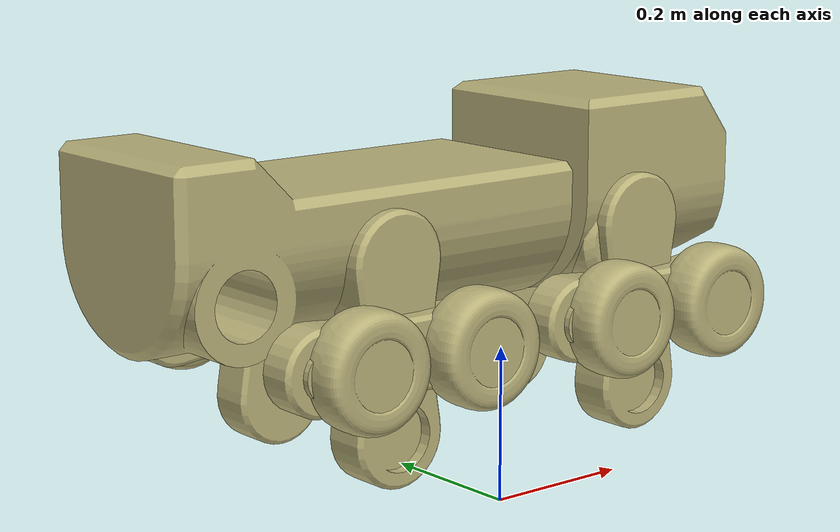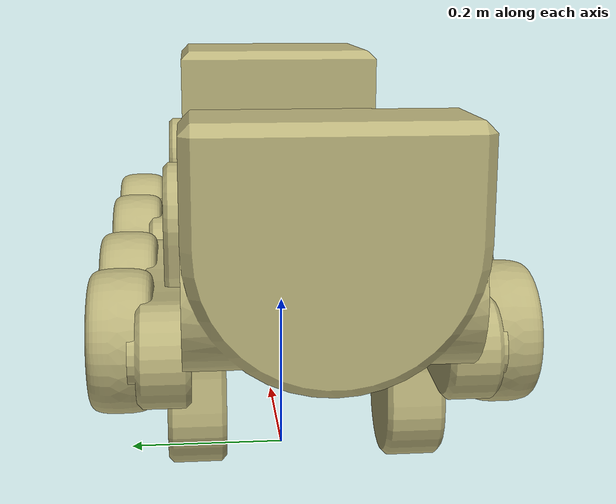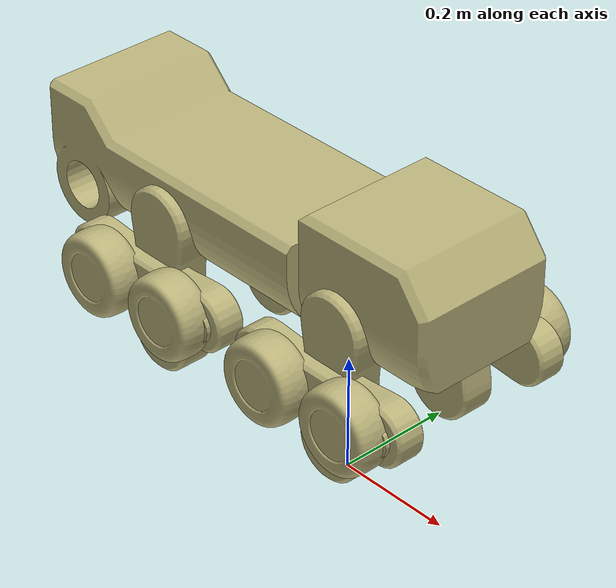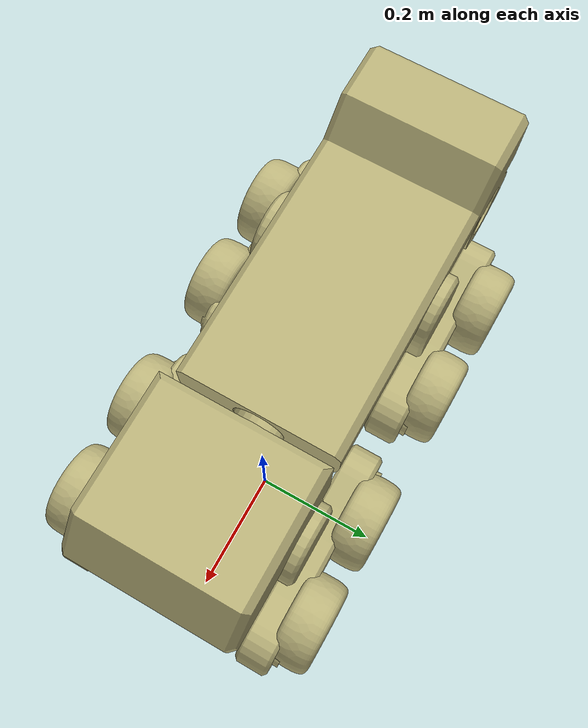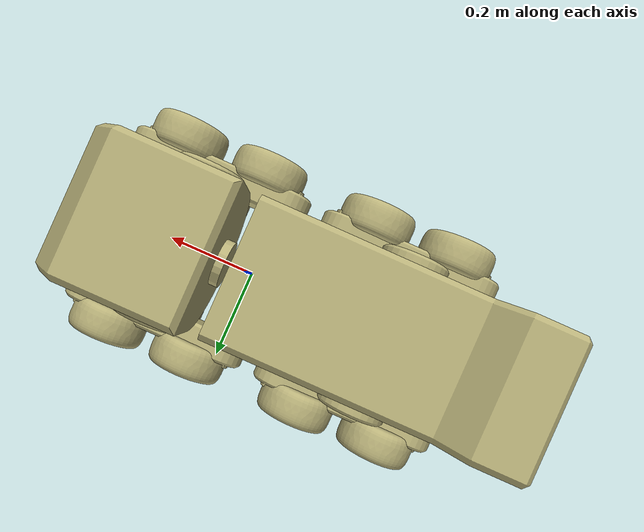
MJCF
<mujoco model="walter">

    <!--Defining the assets for the model-->
  <asset>
    <texture type="skybox" builtin="gradient" rgb1="1 1 1" rgb2=".63 .8 1" width="256" height="256"/>
    <mesh name = "thigh_mesh" file = "assets/Thigh.stl"/>
    <mesh name = "shin_mesh" file = "assets/Shin.stl"/>
    <mesh name = "wheel_mesh" file = "assets/Wheel.stl"/>
    <mesh name = "body_mesh" file = "assets/Body.stl"/>
    <mesh name = "head_mesh" file = "assets/Head.stl"/>
  </asset>

  <!--Defining default classes for components-->
  <default>
    <geom rgba="0.73 0.7 0.48 1"/>
    <!-- Default thigh class -->
    <default class="thigh">
        <geom type="mesh" mesh="thigh_mesh"/>
    </default>

    <!-- Default hip class -->
    <default class = "hip">
        <joint armature = "0.02" damping = "2"/>
    </default>

    <!-- Default shin class -->
    <default class="shin">
        <geom type="mesh" mesh="shin_mesh"/>
    </default>

    <!-- Default knee class -->
    <default class = "knee">
        <joint armature = "0.02" damping = "2"/>
    </default>

    <!-- Default wheel class -->
    <default class="wheel">
        <geom type="mesh" mesh = "wheel_mesh" friction = "0.4 0.005 0.005" solref="0.1 1"/>
    </default>

    <!-- Default wheel joint class-->
    <default class = "wheel_joint">
        <joint type="hinge" axis="0 0 1" damping="0.08"/>
    </default>

    <!-- Default actuator classes -->
    <default class="knee_actuator">
        <motor forcerange="-18 18"/>
    </default>

    <default class="hip_actuator">
        <motor forcerange="-18 18"/>
    </default>

    <default class="wheel_actuator">
        <motor/>
    </default>

  </default>

  <!-- WALTER MODEL -->
    <worldbody>
        <light diffuse=".5 .5 .5" pos="0 0 3" dir="0 0 -1"/>
        <!-- Rear Body Section -->
        <body name="body" pos="0 0 0.4">
            <joint type="free"/>
            <geom type="mesh" mesh = "body_mesh" mass="8" />
            <!-- Add rear legs here -->

            <!-- Back left thigh -->
             <body name = "bl_thigh" pos = "-0.274 0.075 -0.0325" quat = "0 0 1 1">
                <inertial pos = "0 -0.05 0.03" mass = "0.20157" diaginertia="0.0005212 0.000114 0.0005585"/>
                <joint name="bl_hip" class = "hip" type="hinge" axis = "0 0 1" />
                <geom class="thigh"/>
                <!-- Back left shin -->
                <body name = "bl_shin" pos = "0 -0.1 0.043" >
                    <joint name="bl_knee" class = "knee" type="hinge" axis = "0 0 1"/>
                    <geom class="shin"/>
                    <!-- Back left wheels -->
                     <body name = "bl_wheel1" pos = "0.08 0 0.088">
                        <geom class="wheel"/>
                        <joint name="bl_wheel1_joint" class = "wheel_joint" type="hinge" axis="0 0 1"/>
                     </body>
                     <body name = "bl_wheel2" pos = "-0.08 0 0.088">
                        <geom class="wheel"/>
                        <joint name="bl_wheel2_joint" class = "wheel_joint" type="hinge" axis="0 0 1"/>
                     </body>
                </body>
             </body>

            <!-- Back right thigh -->
            <body name = "br_thigh" pos = "-0.274 -0.075 -0.0325" quat = "1 1 0 0">
                <inertial pos = "0 -0.05 0.03" mass = "0.20157" diaginertia="0.0005212 0.000114 0.0005585"/>
                <joint name="br_hip" class = "hip" type="hinge" axis = "0 0 1" />
                <geom class="thigh"/>
                <!-- Back right shin -->
                <body name = "br_shin" pos = "0 -0.1 0.043" >
                    <joint name="br_knee" class = "knee" type="hinge" axis = "0 0 1"/>
                    <geom class="shin"/>
                    <!-- Back right wheels -->
                     <body name = "br_wheel1" pos = "0.08 0 0.088">
                        <geom class="wheel"/>
                        <joint name="br_wheel1_joint" class = "wheel_joint" type="hinge" axis="0 0 1"/>
                     </body>
                     <body name = "br_wheel2" pos = "-0.08 0 0.088">
                        <geom class="wheel"/>
                        <joint name="br_wheel2_joint" class = "wheel_joint" type="hinge" axis="0 0 1"/>
                     </body>
                </body>
             </body>

            <!-- Front Body Section -->
            <body name="head" pos="0.01 0 0">
                <joint name="body_joint" type="hinge" axis = "1 0 0" stiffness = "0.05" range = "-0.5 0.5"/>
                <geom type="mesh" mesh = "head_mesh" mass = "4"/>

                <!-- Add front legs here -->
                 <!-- Front left thigh -->
                 <body name = "fl_thigh" pos = "0.094 0.075 -0.0325" quat = "0 0 1 1">
                    <inertial pos = "0 -0.05 0.03" mass = "0.20157" diaginertia="0.0005212 0.000114 0.0005585"/>
                    <joint name="fl_hip" class = "hip" type="hinge" axis = "0 0 1" />
                    <geom class="thigh"/>
                    <!-- Back left shin -->
                    <body name = "fl_shin" pos = "0 -0.1 0.043" >
                        <joint name="fl_knee" class = "knee" type="hinge" axis = "0 0 1"/>
                        <geom class="shin"/>
                        <!-- Back left wheels -->
                         <body name = "fl_wheel1" pos = "0.08 0 0.088">
                            <geom class="wheel"/>
                            <joint name="fl_wheel1_joint" class = "wheel_joint" type="hinge" axis="0 0 1"/>
                         </body>
                         <body name = "fl_wheel2" pos = "-0.08 0 0.088">
                            <geom class="wheel"/>
                            <joint name="fl_wheel2_joint" class = "wheel_joint" type="hinge" axis="0 0 1"/>
                         </body>
                    </body>
                 </body>

                <!-- Front right thigh -->
                <body name = "fr_thigh" pos = "0.094 -0.075 -0.0325" quat = "1 1 0 0">
                    <inertial pos = "0 -0.05 0.03" mass = "0.20157" diaginertia="0.0005212 0.000114 0.0005585"/>
                    <joint name="fr_hip" class = "hip" type="hinge" axis = "0 0 1" />
                    <geom class="thigh"/>
                    <!-- Back left shin -->
                    <body name = "fr_shin" pos = "0 -0.1 0.043" >
                        <joint name="fr_knee" class = "knee" type="hinge" axis = "0 0 1"/>
                        <geom class="shin"/>
                        <!-- Back left wheels -->
                            <body name = "fr_wheel1" pos = "0.08 0 0.088">
                                <geom class="wheel"/>
                                <joint name="fr_wheel1_joint" class = "wheel_joint" type="hinge" axis="0 0 1"/>
                            </body>
                            <body name = "fr_wheel2" pos = "-0.08 0 0.088">
                                <geom class="wheel"/>
                                <joint name="fr_wheel2_joint" class = "wheel_joint" type="hinge" axis="0 0 1"/>
                            </body>
                    </body>
                </body>
            </body>
            </body>
        </worldbody>

    <!-- Defining the actuators -->
    <actuator>
        <motor joint="fr_hip" class = "hip_actuator"/>
        <motor joint="fr_knee" class = "knee_actuator"/>
        <motor joint="fr_wheel1_joint" class = "wheel_actuator"/>
        <motor joint="fr_wheel2_joint" class = "wheel_actuator"/>
        <motor joint="fl_hip" class = "hip_actuator"/>
        <motor joint="fl_knee" class = "knee_actuator"/>
        <motor joint="fl_wheel1_joint" class = "wheel_actuator"/>
        <motor joint="fl_wheel2_joint" class = "wheel_actuator"/>
        <motor joint="br_hip" class = "hip_actuator"/>
        <motor joint="br_knee" class = "knee_actuator"/>
        <motor joint="br_wheel1_joint" class = "wheel_actuator"/>
        <motor joint="br_wheel2_joint" class = "wheel_actuator"/>
        <motor joint="bl_hip" class = "hip_actuator"/>
        <motor joint="bl_knee" class = "knee_actuator"/>
        <motor joint="bl_wheel1_joint" class = "wheel_actuator"/>
        <motor joint="bl_wheel2_joint" class = "wheel_actuator"/>
    </actuator>
</mujoco>
